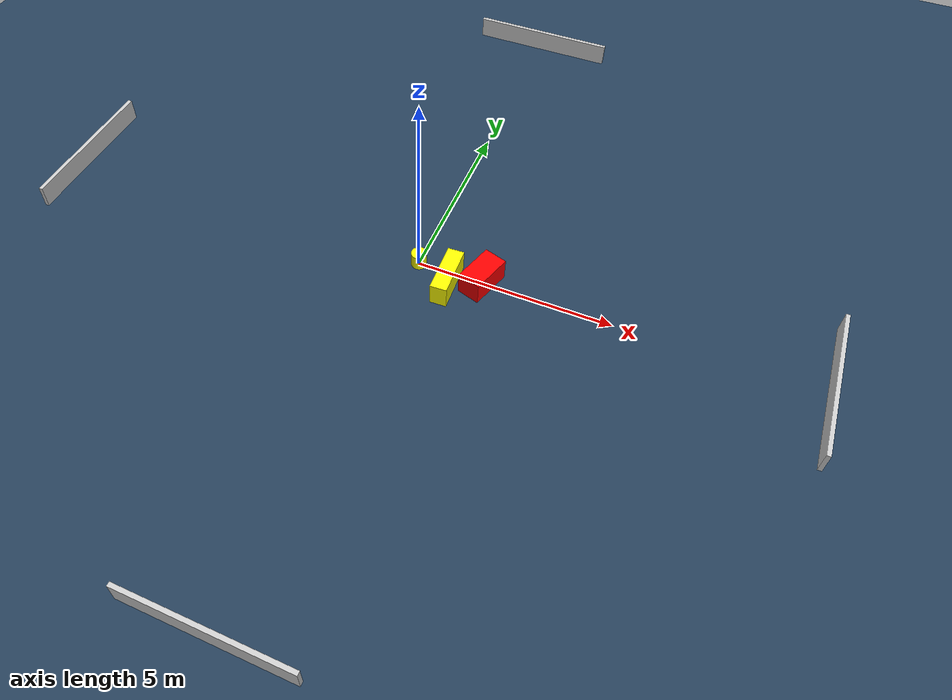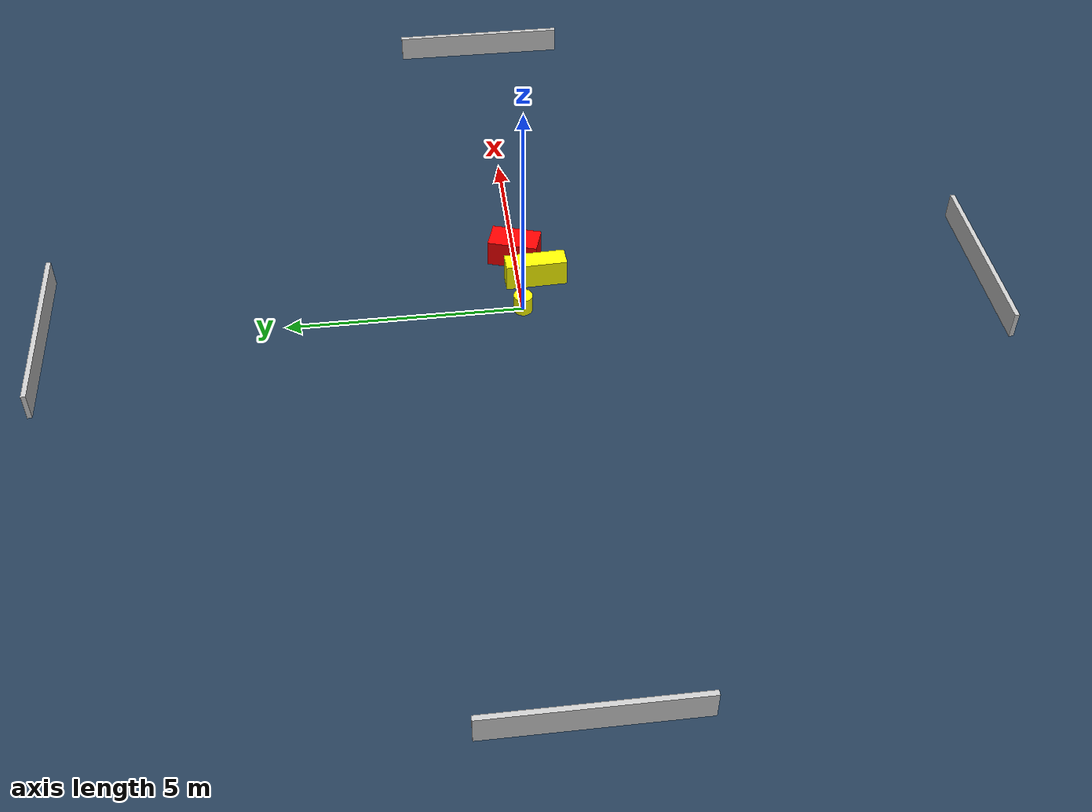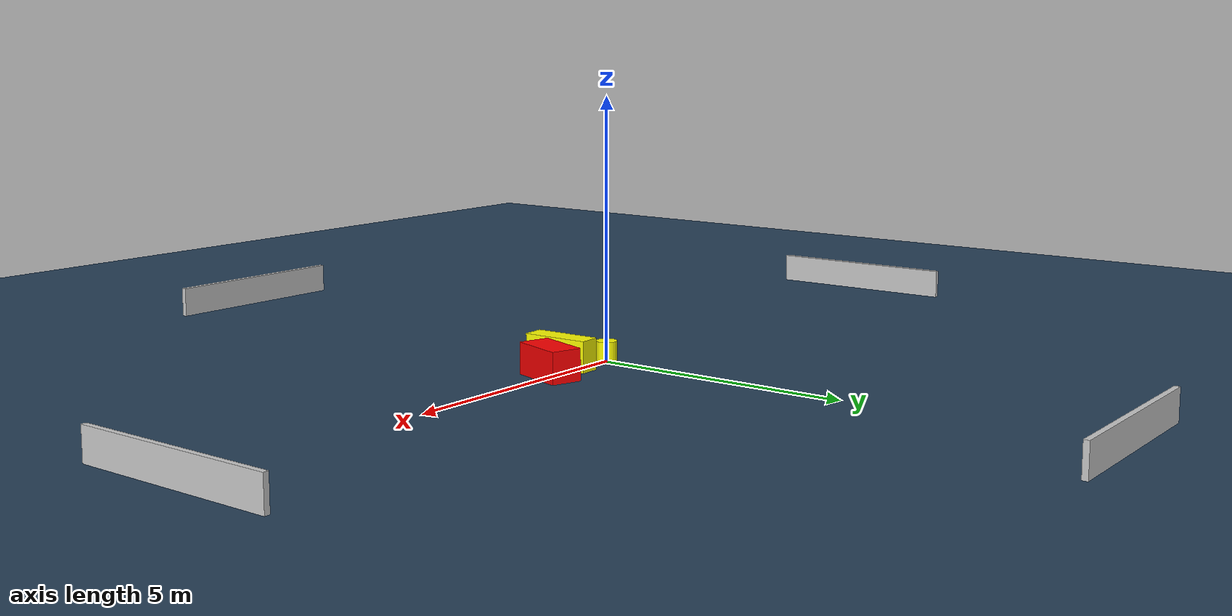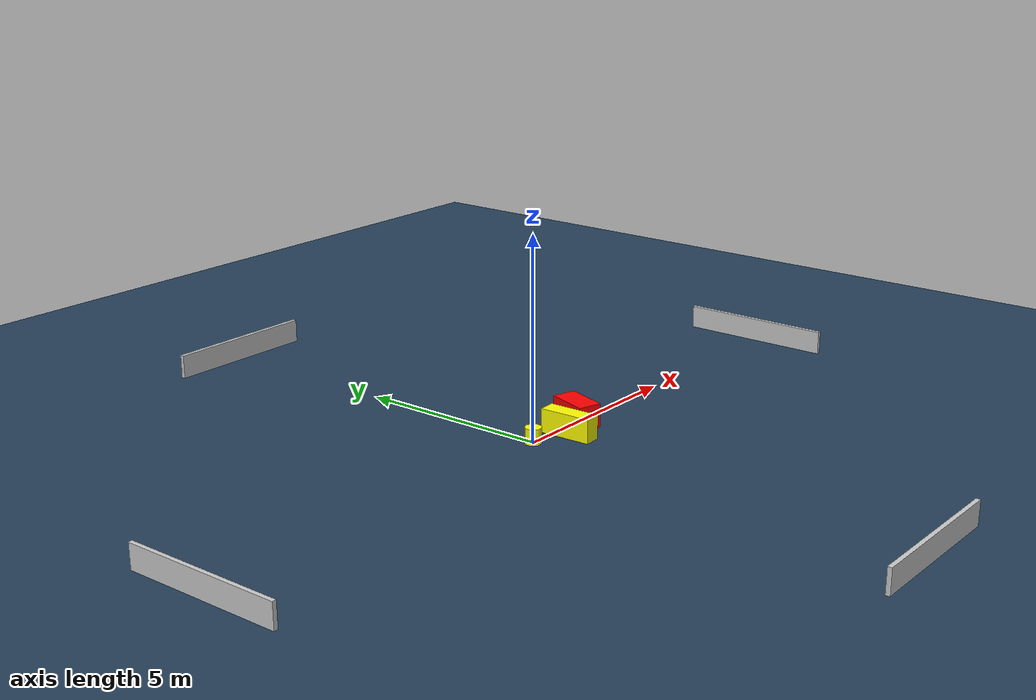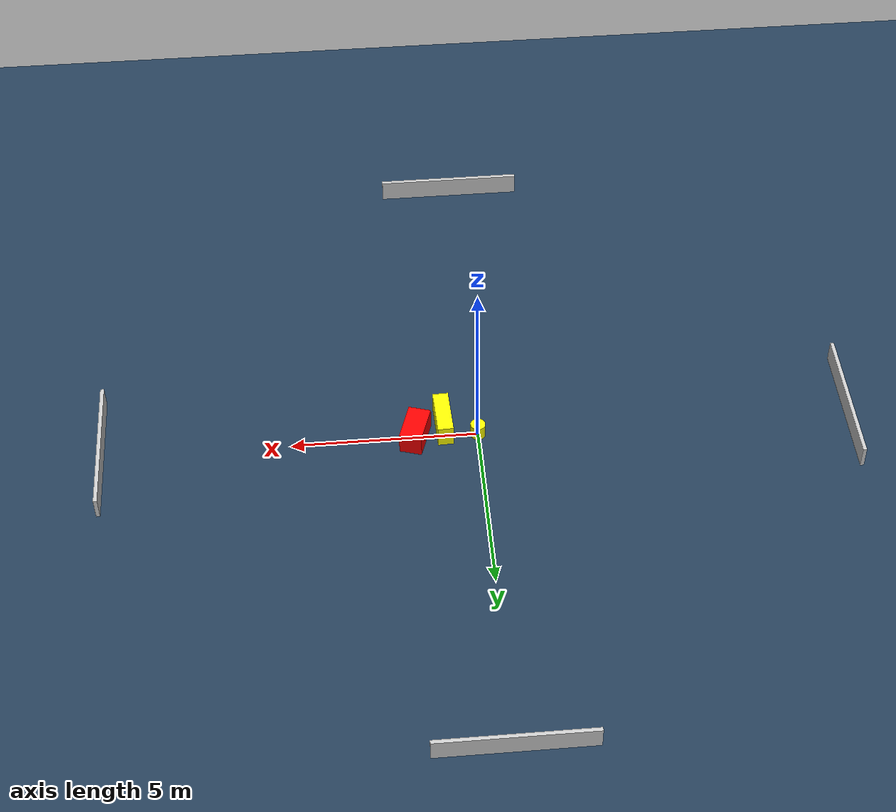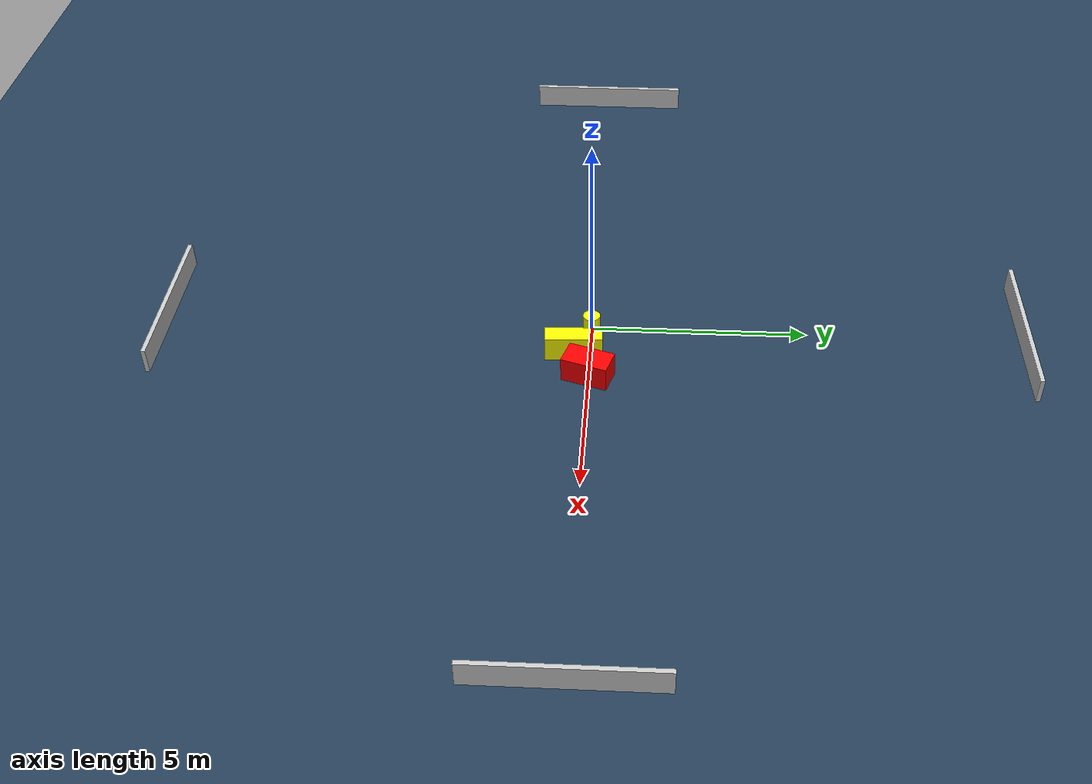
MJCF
<?xml version="1.0" ?>
<mujoco model="generated_environment">
  <option timestep="0.01" integrator="RK4" cone="elliptic"/>
  <default>
    <geom density="1"/>
  </default>
  <asset>
    <texture builtin="gradient" height="3072" name="skybox" rgb1="0.3 0.5 0.7" rgb2="0 0 0" type="skybox" width="512"/>
    <texture builtin="checker" height="300" name="groundplane" rgb1="0.2 0.3 0.4" rgb2="0.1 0.2 0.3" type="2d" width="300"/>
    <material name="groundplane" reflectance="0.2" texrepeat="5 5" texture="groundplane"/>
  </asset>
  <worldbody>
    <light dir="0 0 -1" directional="true" pos="0 0 1.5"/>
    <geom condim="3" friction="0.5 0.005 0.001" material="groundplane" name="floor" pos="0 0 0" size="0 0 0.05" type="plane"/>
    <body name="walls">
      <geom name="wall_1" condim="4" pos="-10.0 0.0 0.3" rgba="0.800000011920929 0.800000011920929 0.800000011920929 1.0" size="0.05 2.0 0.3" type="box"/>
      <geom name="wall_2" condim="4" pos="10.0 0.0 0.3" rgba="0.800000011920929 0.800000011920929 0.800000011920929 1.0" size="0.05 2.0 0.3" type="box"/>
      <geom name="wall_3" condim="4" pos="0.0 -10.0 0.3" rgba="0.800000011920929 0.800000011920929 0.800000011920929 1.0" size="2.0 0.05 0.3" type="box"/>
      <geom name="wall_4" condim="4" pos="0.0 10.0 0.3" rgba="0.800000011920929 0.800000011920929 0.800000011920929 1.0" size="2.0 0.05 0.3" type="box"/>
    </body>
    <body name="robot">
      <joint name="joint_x" type="slide" pos="0 0 0" axis="1 0 0"/>
      <joint name="joint_y" type="slide" pos="0 0 0" axis="0 1 0"/>
      <geom name="robot" type="cylinder" pos="0.0 0.0 0.2" size="0.2 0.2 0.0" mass="5.0" friction="1.0 0.005 0.0001" condim="4" rgba="1.0 1.0 0.0 1.0"/>
    </body>
    <body name="obstacle_1_movable">
      <geom name="obstacle_1_movable" condim="4" pos="0.9050786768875597 -0.3715217130758639 0.3" euler="0 0 2.321215965260812" friction="0.0 0.005 0.001" rgba="1.0 1.0 0.0 1.0" size="0.2114597376821491 0.6561174367482936 0.3" type="box" mass="0.1"/>
      <joint type="free"/>
    </body>
    <body name="obstacle_2_static">
      <geom name="obstacle_2_static" condim="4" pos="1.6773306260607612 -0.00716713596632181 0.3" euler="0 0 252.43491933126427" friction="0.0 0.005 0.001" rgba="1.0 0.0 0.0 1.0" size="0.5407641150506799 0.30061345292614516 0.3" type="box"/>
    </body>
  </worldbody>
  <actuator>
    <motor name="actuator_x" joint="joint_x" gear="1" ctrlrange="-1 1"/>
    <motor name="actuator_y" joint="joint_y" gear="1" ctrlrange="-1 1"/>
  </actuator>
</mujoco>
